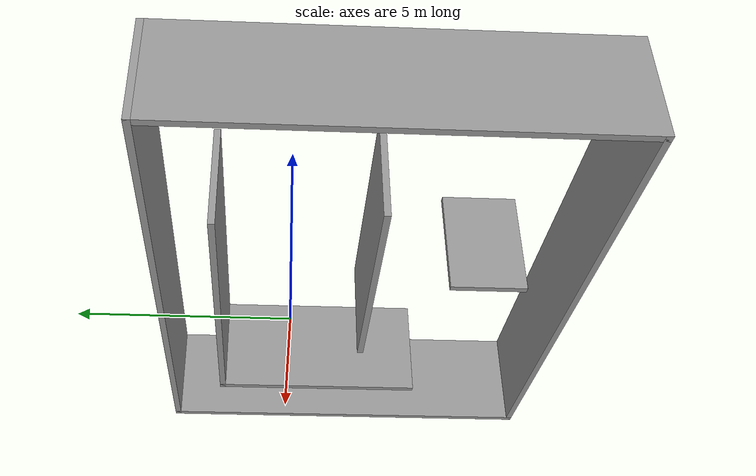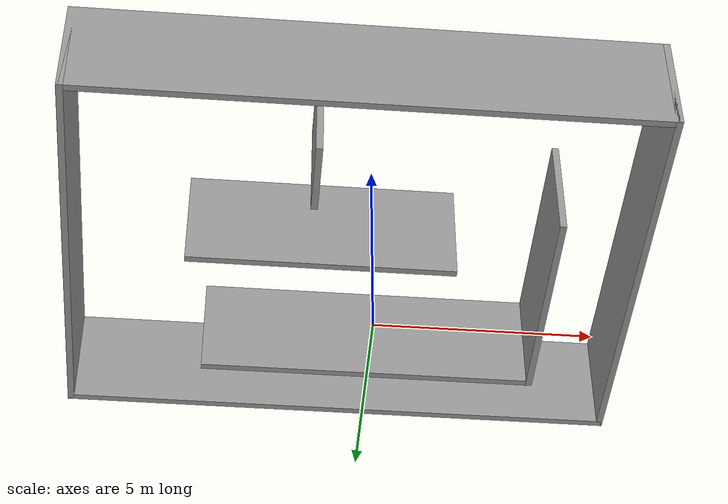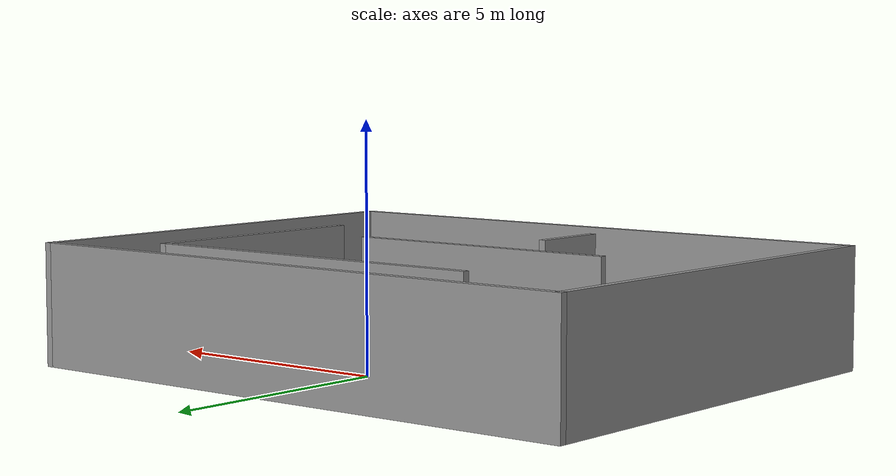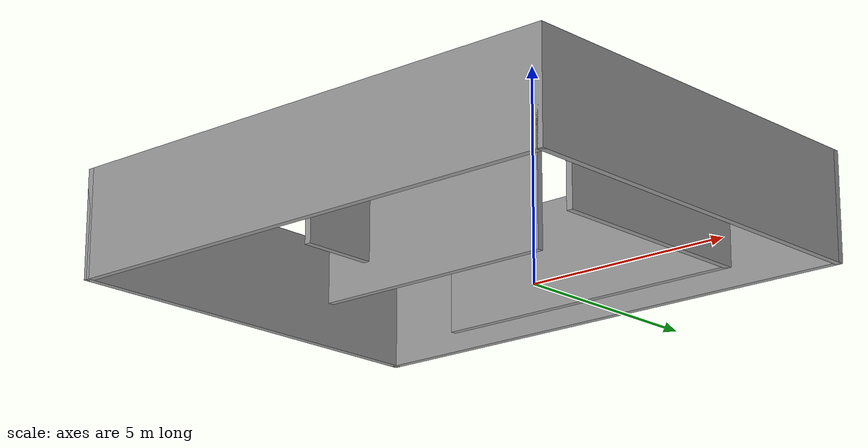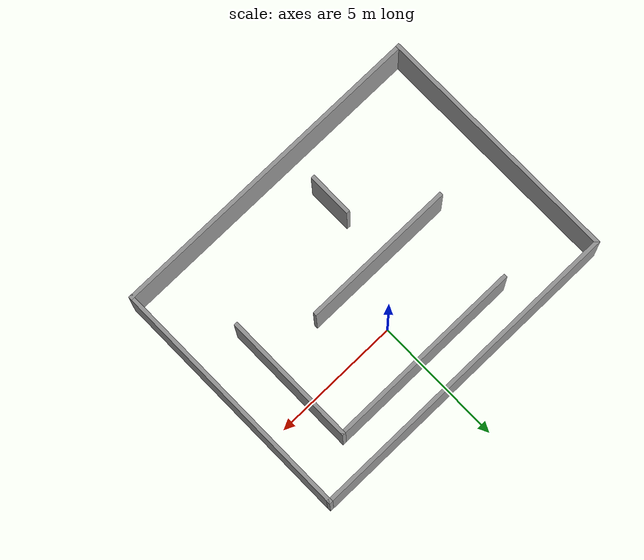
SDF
<?xml version='1.0'?>
<sdf version='1.7'>
  <model name='maze1'>
    <pose>-0.59 -1.74 0 0 -0 0</pose>
    <link name='Wall_11'>
      <collision name='Wall_11_Collision'>
        <geometry>
          <box>
            <size>6 0.15 2.5</size>
          </box>
        </geometry>
        <pose>0 0 1.25 0 -0 0</pose>
      </collision>
      <visual name='Wall_11_Visual'>
        <pose>0 0 1.25 0 -0 0</pose>
        <geometry>
          <box>
            <size>6 0.15 2.5</size>
          </box>
        </geometry>
        <material>
          <script>
            <uri>file://media/materials/scripts/gazebo.material</uri>
            <name>Gazebo/Grey</name>
          </script>
          <ambient>1 1 1 1</ambient>
        </material>
        <meta>
          <layer>0</layer>
        </meta>
      </visual>
      <pose>-0.712032 -0.075983 0 0 -0 0</pose>
    </link>
    <link name='Wall_13'>
      <collision name='Wall_13_Collision'>
        <geometry>
          <box>
            <size>9.75 0.15 2.5</size>
          </box>
        </geometry>
        <pose>0 0 1.25 0 -0 0</pose>
      </collision>
      <visual name='Wall_13_Visual'>
        <pose>0 0 1.25 0 -0 0</pose>
        <geometry>
          <box>
            <size>9.75 0.15 2.5</size>
          </box>
        </geometry>
        <material>
          <script>
            <uri>file://media/materials/scripts/gazebo.material</uri>
            <name>Gazebo/Grey</name>
          </script>
          <ambient>1 1 1 1</ambient>
        </material>
        <meta>
          <layer>0</layer>
        </meta>
      </visual>
      <pose>-6.3 0 0 0 -0 -1.5708</pose>
    </link>
    <link name='Wall_14'>
      <collision name='Wall_14_Collision'>
        <geometry>
          <box>
            <size>12.75 0.15 2.5</size>
          </box>
        </geometry>
        <pose>0 0 1.25 0 -0 0</pose>
      </collision>
      <visual name='Wall_14_Visual'>
        <pose>0 0 1.25 0 -0 0</pose>
        <geometry>
          <box>
            <size>12.75 0.15 2.5</size>
          </box>
        </geometry>
        <material>
          <script>
            <uri>file://media/materials/scripts/gazebo.material</uri>
            <name>Gazebo/Grey</name>
          </script>
          <ambient>1 1 1 1</ambient>
        </material>
        <meta>
          <layer>0</layer>
        </meta>
      </visual>
      <pose>-0 -4.8 0 0 -0 0</pose>
    </link>
    <link name='Wall_15'>
      <collision name='Wall_15_Collision'>
        <geometry>
          <box>
            <size>9.75 0.15 2.5</size>
          </box>
        </geometry>
        <pose>0 0 1.25 0 -0 0</pose>
      </collision>
      <visual name='Wall_15_Visual'>
        <pose>0 0 1.25 0 -0 0</pose>
        <geometry>
          <box>
            <size>9.75 0.15 2.5</size>
          </box>
        </geometry>
        <material>
          <script>
            <uri>file://media/materials/scripts/gazebo.material</uri>
            <name>Gazebo/Grey</name>
          </script>
          <ambient>1 1 1 1</ambient>
        </material>
        <meta>
          <layer>0</layer>
        </meta>
      </visual>
      <pose>6.3 0 0 0 -0 1.5708</pose>
    </link>
    <link name='Wall_19'>
      <collision name='Wall_19_Collision'>
        <geometry>
          <box>
            <size>1.75 0.15 2.5</size>
          </box>
        </geometry>
        <pose>0 0 1.25 0 -0 0</pose>
      </collision>
      <visual name='Wall_19_Visual'>
        <pose>0 0 1.25 0 -0 0</pose>
        <geometry>
          <box>
            <size>1.75 0.15 2.5</size>
          </box>
        </geometry>
        <material>
          <script>
            <uri>file://media/materials/scripts/gazebo.material</uri>
            <name>Gazebo/Grey</name>
          </script>
          <ambient>1 1 1 1</ambient>
        </material>
        <meta>
          <layer>0</layer>
        </meta>
      </visual>
      <pose>-0.98204 -2.68621 0 0 -0 -1.5708</pose>
    </link>
    <link name='Wall_3'>
      <collision name='Wall_3_Collision'>
        <geometry>
          <box>
            <size>12.75 0.15 2.5</size>
          </box>
        </geometry>
        <pose>0 0 1.25 0 -0 0</pose>
      </collision>
      <visual name='Wall_3_Visual'>
        <pose>0 0 1.25 0 -0 0</pose>
        <geometry>
          <box>
            <size>12.75 0.15 2.5</size>
          </box>
        </geometry>
        <material>
          <script>
            <uri>file://media/materials/scripts/gazebo.material</uri>
            <name>Gazebo/Grey</name>
          </script>
          <ambient>1 1 1 1</ambient>
        </material>
        <meta>
          <layer>0</layer>
        </meta>
      </visual>
      <pose>-0 4.8 0 0 -0 3.14159</pose>
    </link>
    <link name='Wall_6'>
      <collision name='Wall_6_Collision'>
        <geometry>
          <box>
            <size>7.75 0.15 2.5</size>
          </box>
        </geometry>
        <pose>0 0 1.25 0 -0 0</pose>
      </collision>
      <visual name='Wall_6_Visual'>
        <pose>0 0 1.25 0 -0 0</pose>
        <geometry>
          <box>
            <size>7.75 0.15 2.5</size>
          </box>
        </geometry>
        <material>
          <script>
            <uri>file://media/materials/scripts/gazebo.material</uri>
            <name>Gazebo/Grey</name>
          </script>
          <ambient>1 1 1 1</ambient>
        </material>
        <meta>
          <layer>0</layer>
        </meta>
      </visual>
      <pose>0.605467 3.464 0 0 -0 0</pose>
    </link>
    <link name='Wall_7'>
      <collision name='Wall_7_Collision'>
        <geometry>
          <box>
            <size>5.25 0.15 2.5</size>
          </box>
        </geometry>
        <pose>0 0 1.25 0 -0 0</pose>
      </collision>
      <visual name='Wall_7_Visual'>
        <pose>0 0 1.25 0 -0 0</pose>
        <geometry>
          <box>
            <size>5.25 0.15 2.5</size>
          </box>
        </geometry>
        <material>
          <script>
            <uri>file://media/materials/scripts/gazebo.material</uri>
            <name>Gazebo/Grey</name>
          </script>
          <ambient>1 1 1 1</ambient>
        </material>
        <meta>
          <layer>0</layer>
        </meta>
      </visual>
      <pose>4.40547 0.914005 0 0 -0 -1.5708</pose>
    </link>
    <static>1</static>
  </model>
</sdf>
